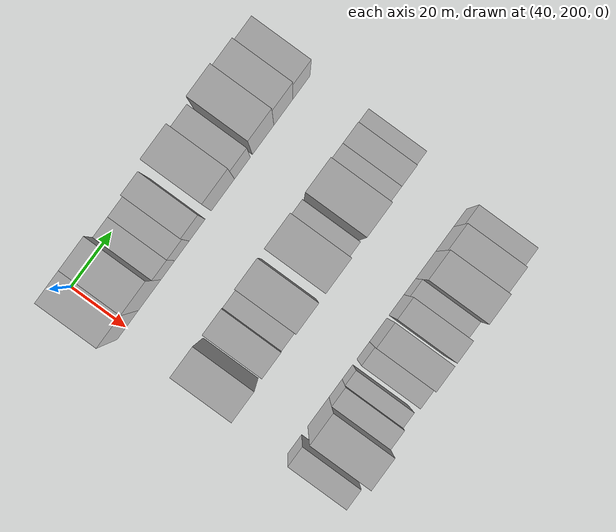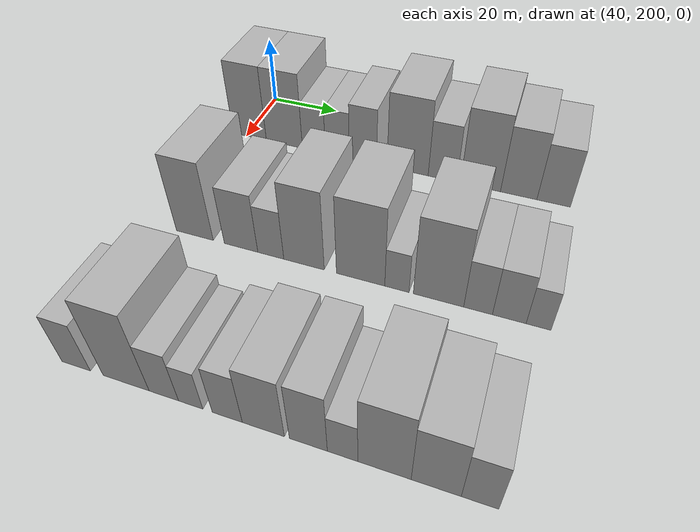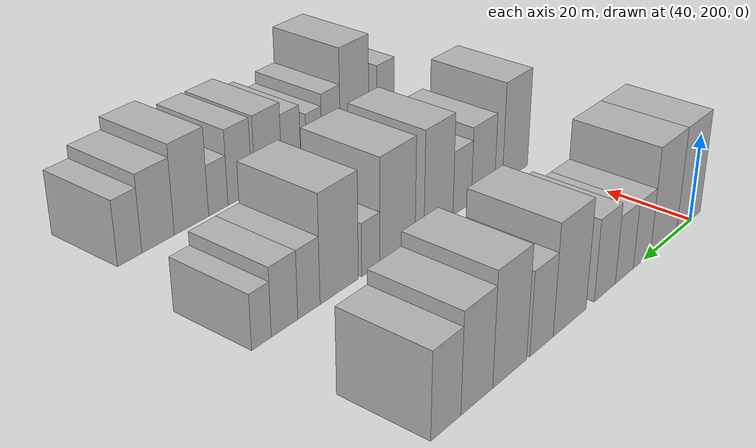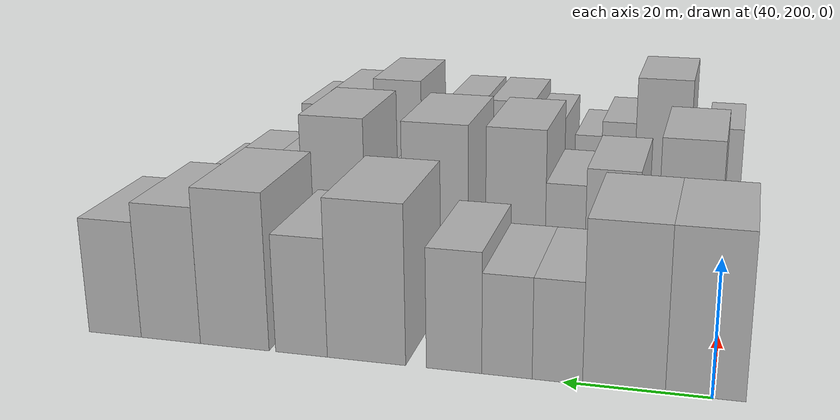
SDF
<sdf version="1.6">
 <world name="default">
  <model name="building_68">
   <static>1</static>
   <pose>50.0000 200.9179 0 0.000000 0.000000 0.000000</pose>
   <link name="link">
    <pose>0 0 12.00 0 0 0</pose>
    <collision name="collision"><geometry><box><size>20.0000 10.5770 24.0000</size></box></geometry></collision>
    <visual name="visual">
     <cast_shadows>0</cast_shadows>
     <geometry><box><size>20.0000 10.5770 24.0000</size></box></geometry>
     <material>
      <script>
       <uri>model://HANNAS_wall/materials/scripts</uri>
       <uri>model://HANNAS_wall/materials/textures</uri>
       <name>vrc/HANNAS_wall</name>
      </script>
     </material>
    </visual>
   </link>
  </model>
  <model name="building_69">
   <static>1</static>
   <pose>50.0000 211.7810 0 0.000000 0.000000 0.000000</pose>
   <link name="link">
    <pose>0 0 12.00 0 0 0</pose>
    <collision name="collision"><geometry><box><size>20.0000 11.1493 24.0000</size></box></geometry></collision>
    <visual name="visual">
     <cast_shadows>0</cast_shadows>
     <geometry><box><size>20.0000 11.1493 24.0000</size></box></geometry>
     <material>
      <script>
       <uri>model://HANNAS_wall/materials/scripts</uri>
       <uri>model://HANNAS_wall/materials/textures</uri>
       <name>vrc/HANNAS_wall</name>
      </script>
     </material>
    </visual>
   </link>
  </model>
  <model name="building_70">
   <static>1</static>
   <pose>50.0000 220.8269 0 0.000000 0.000000 0.000000</pose>
   <link name="link">
    <pose>0 0 7.50 0 0 0</pose>
    <collision name="collision"><geometry><box><size>20.0000 6.9425 15.0000</size></box></geometry></collision>
    <visual name="visual">
     <cast_shadows>0</cast_shadows>
     <geometry><box><size>20.0000 6.9425 15.0000</size></box></geometry>
     <material>
      <script>
       <uri>model://HANNAS_wall/materials/scripts</uri>
       <uri>model://HANNAS_wall/materials/textures</uri>
       <name>vrc/HANNAS_wall</name>
      </script>
     </material>
    </visual>
   </link>
  </model>
  <model name="building_71">
   <static>1</static>
   <pose>50.0000 227.8247 0 0.000000 0.000000 0.000000</pose>
   <link name="link">
    <pose>0 0 7.50 0 0 0</pose>
    <collision name="collision"><geometry><box><size>20.0000 7.0530 15.0000</size></box></geometry></collision>
    <visual name="visual">
     <cast_shadows>0</cast_shadows>
     <geometry><box><size>20.0000 7.0530 15.0000</size></box></geometry>
     <material>
      <script>
       <uri>model://HANNAS_wall/materials/scripts</uri>
       <uri>model://HANNAS_wall/materials/textures</uri>
       <name>vrc/HANNAS_wall</name>
      </script>
     </material>
    </visual>
   </link>
  </model>
  <model name="building_72">
   <static>1</static>
   <pose>50.0000 235.3184 0 0.000000 0.000000 0.000000</pose>
   <link name="link">
    <pose>0 0 9.00 0 0 0</pose>
    <collision name="collision"><geometry><box><size>20.0000 7.9345 18.0000</size></box></geometry></collision>
    <visual name="visual">
     <cast_shadows>0</cast_shadows>
     <geometry><box><size>20.0000 7.9345 18.0000</size></box></geometry>
     <material>
      <script>
       <uri>model://HANNAS_wall/materials/scripts</uri>
       <uri>model://HANNAS_wall/materials/textures</uri>
       <name>vrc/HANNAS_wall</name>
      </script>
     </material>
    </visual>
   </link>
  </model>
  <model name="building_73">
   <static>1</static>
   <pose>50.0000 248.0648 0 0.000000 0.000000 0.000000</pose>
   <link name="link">
    <pose>0 0 12.00 0 0 0</pose>
    <collision name="collision"><geometry><box><size>20.0000 11.5583 24.0000</size></box></geometry></collision>
    <visual name="visual">
     <cast_shadows>0</cast_shadows>
     <geometry><box><size>20.0000 11.5583 24.0000</size></box></geometry>
     <material>
      <script>
       <uri>model://HANNAS_wall/materials/scripts</uri>
       <uri>model://HANNAS_wall/materials/textures</uri>
       <name>vrc/HANNAS_wall</name>
      </script>
     </material>
    </visual>
   </link>
  </model>
  <model name="building_74">
   <static>1</static>
   <pose>50.0000 257.7547 0 0.000000 0.000000 0.000000</pose>
   <link name="link">
    <pose>0 0 9.00 0 0 0</pose>
    <collision name="collision"><geometry><box><size>20.0000 7.8214 18.0000</size></box></geometry></collision>
    <visual name="visual">
     <cast_shadows>0</cast_shadows>
     <geometry><box><size>20.0000 7.8214 18.0000</size></box></geometry>
     <material>
      <script>
       <uri>model://HANNAS_wall/materials/scripts</uri>
       <uri>model://HANNAS_wall/materials/textures</uri>
       <name>vrc/HANNAS_wall</name>
      </script>
     </material>
    </visual>
   </link>
  </model>
  <model name="building_75">
   <static>1</static>
   <pose>50.0000 267.9823 0 0.000000 0.000000 0.000000</pose>
   <link name="link">
    <pose>0 0 12.00 0 0 0</pose>
    <collision name="collision"><geometry><box><size>20.0000 10.6339 24.0000</size></box></geometry></collision>
    <visual name="visual">
     <cast_shadows>0</cast_shadows>
     <geometry><box><size>20.0000 10.6339 24.0000</size></box></geometry>
     <material>
      <script>
       <uri>model://HANNAS_wall/materials/scripts</uri>
       <uri>model://HANNAS_wall/materials/textures</uri>
       <name>vrc/HANNAS_wall</name>
      </script>
     </material>
    </visual>
   </link>
  </model>
  <model name="building_76">
   <static>1</static>
   <pose>50.0000 278.0014 0 0.000000 0.000000 0.000000</pose>
   <link name="link">
    <pose>0 0 10.50 0 0 0</pose>
    <collision name="collision"><geometry><box><size>20.0000 9.4041 21.0000</size></box></geometry></collision>
    <visual name="visual">
     <cast_shadows>0</cast_shadows>
     <geometry><box><size>20.0000 9.4041 21.0000</size></box></geometry>
     <material>
      <script>
       <uri>model://HANNAS_wall/materials/scripts</uri>
       <uri>model://HANNAS_wall/materials/textures</uri>
       <name>vrc/HANNAS_wall</name>
      </script>
     </material>
    </visual>
   </link>
  </model>
  <model name="building_77">
   <static>1</static>
   <pose>50.0000 286.9192 0 0.000000 0.000000 0.000000</pose>
   <link name="link">
    <pose>0 0 9.00 0 0 0</pose>
    <collision name="collision"><geometry><box><size>20.0000 8.4316 18.0000</size></box></geometry></collision>
    <visual name="visual">
     <cast_shadows>0</cast_shadows>
     <geometry><box><size>20.0000 8.4316 18.0000</size></box></geometry>
     <material>
      <script>
       <uri>model://HANNAS_wall/materials/scripts</uri>
       <uri>model://HANNAS_wall/materials/textures</uri>
       <name>vrc/HANNAS_wall</name>
      </script>
     </material>
    </visual>
   </link>
  </model>
  <model name="building_158">
   <static>1</static>
   <pose>90.0000 205.8210 0 0.000000 0.000000 0.000000</pose>
   <link name="link">
    <pose>0 0 12.00 0 0 0</pose>
    <collision name="collision"><geometry><box><size>20.0000 10.0894 24.0000</size></box></geometry></collision>
    <visual name="visual">
     <cast_shadows>0</cast_shadows>
     <geometry><box><size>20.0000 10.0894 24.0000</size></box></geometry>
     <material>
      <script>
       <uri>model://HANNAS_wall/materials/scripts</uri>
       <uri>model://HANNAS_wall/materials/textures</uri>
       <name>vrc/HANNAS_wall</name>
      </script>
     </material>
    </visual>
   </link>
  </model>
  <model name="building_159">
   <static>1</static>
   <pose>90.0000 218.2884 0 0.000000 0.000000 0.000000</pose>
   <link name="link">
    <pose>0 0 9.00 0 0 0</pose>
    <collision name="collision"><geometry><box><size>20.0000 8.8454 18.0000</size></box></geometry></collision>
    <visual name="visual">
     <cast_shadows>0</cast_shadows>
     <geometry><box><size>20.0000 8.8454 18.0000</size></box></geometry>
     <material>
      <script>
       <uri>model://HANNAS_wall/materials/scripts</uri>
       <uri>model://HANNAS_wall/materials/textures</uri>
       <name>vrc/HANNAS_wall</name>
      </script>
     </material>
    </visual>
   </link>
  </model>
  <model name="building_160">
   <static>1</static>
   <pose>90.0000 226.0633 0 0.000000 0.000000 0.000000</pose>
   <link name="link">
    <pose>0 0 7.50 0 0 0</pose>
    <collision name="collision"><geometry><box><size>20.0000 6.7044 15.0000</size></box></geometry></collision>
    <visual name="visual">
     <cast_shadows>0</cast_shadows>
     <geometry><box><size>20.0000 6.7044 15.0000</size></box></geometry>
     <material>
      <script>
       <uri>model://HANNAS_wall/materials/scripts</uri>
       <uri>model://HANNAS_wall/materials/textures</uri>
       <name>vrc/HANNAS_wall</name>
      </script>
     </material>
    </visual>
   </link>
  </model>
  <model name="building_161">
   <static>1</static>
   <pose>90.0000 234.4934 0 0.000000 0.000000 0.000000</pose>
   <link name="link">
    <pose>0 0 12.00 0 0 0</pose>
    <collision name="collision"><geometry><box><size>20.0000 10.1559 24.0000</size></box></geometry></collision>
    <visual name="visual">
     <cast_shadows>0</cast_shadows>
     <geometry><box><size>20.0000 10.1559 24.0000</size></box></geometry>
     <material>
      <script>
       <uri>model://HANNAS_wall/materials/scripts</uri>
       <uri>model://HANNAS_wall/materials/textures</uri>
       <name>vrc/HANNAS_wall</name>
      </script>
     </material>
    </visual>
   </link>
  </model>
  <model name="building_162">
   <static>1</static>
   <pose>90.0000 248.3686 0 0.000000 0.000000 0.000000</pose>
   <link name="link">
    <pose>0 0 12.00 0 0 0</pose>
    <collision name="collision"><geometry><box><size>20.0000 11.5945 24.0000</size></box></geometry></collision>
    <visual name="visual">
     <cast_shadows>0</cast_shadows>
     <geometry><box><size>20.0000 11.5945 24.0000</size></box></geometry>
     <material>
      <script>
       <uri>model://HANNAS_wall/materials/scripts</uri>
       <uri>model://HANNAS_wall/materials/textures</uri>
       <name>vrc/HANNAS_wall</name>
      </script>
     </material>
    </visual>
   </link>
  </model>
  <model name="building_163">
   <static>1</static>
   <pose>90.0000 256.9920 0 0.000000 0.000000 0.000000</pose>
   <link name="link">
    <pose>0 0 6.00 0 0 0</pose>
    <collision name="collision"><geometry><box><size>20.0000 5.6522 12.0000</size></box></geometry></collision>
    <visual name="visual">
     <cast_shadows>0</cast_shadows>
     <geometry><box><size>20.0000 5.6522 12.0000</size></box></geometry>
     <material>
      <script>
       <uri>model://HANNAS_wall/materials/scripts</uri>
       <uri>model://HANNAS_wall/materials/textures</uri>
       <name>vrc/HANNAS_wall</name>
      </script>
     </material>
    </visual>
   </link>
  </model>
  <model name="building_164">
   <static>1</static>
   <pose>90.0000 266.5095 0 0.000000 0.000000 0.000000</pose>
   <link name="link">
    <pose>0 0 12.00 0 0 0</pose>
    <collision name="collision"><geometry><box><size>20.0000 11.3828 24.0000</size></box></geometry></collision>
    <visual name="visual">
     <cast_shadows>0</cast_shadows>
     <geometry><box><size>20.0000 11.3828 24.0000</size></box></geometry>
     <material>
      <script>
       <uri>model://HANNAS_wall/materials/scripts</uri>
       <uri>model://HANNAS_wall/materials/textures</uri>
       <name>vrc/HANNAS_wall</name>
      </script>
     </material>
    </visual>
   </link>
  </model>
  <model name="building_165">
   <static>1</static>
   <pose>90.0000 275.3521 0 0.000000 0.000000 0.000000</pose>
   <link name="link">
    <pose>0 0 7.50 0 0 0</pose>
    <collision name="collision"><geometry><box><size>20.0000 6.3025 15.0000</size></box></geometry></collision>
    <visual name="visual">
     <cast_shadows>0</cast_shadows>
     <geometry><box><size>20.0000 6.3025 15.0000</size></box></geometry>
     <material>
      <script>
       <uri>model://HANNAS_wall/materials/scripts</uri>
       <uri>model://HANNAS_wall/materials/textures</uri>
       <name>vrc/HANNAS_wall</name>
      </script>
     </material>
    </visual>
   </link>
  </model>
  <model name="building_166">
   <static>1</static>
   <pose>90.0000 282.1165 0 0.000000 0.000000 0.000000</pose>
   <link name="link">
    <pose>0 0 7.50 0 0 0</pose>
    <collision name="collision"><geometry><box><size>20.0000 7.2263 15.0000</size></box></geometry></collision>
    <visual name="visual">
     <cast_shadows>0</cast_shadows>
     <geometry><box><size>20.0000 7.2263 15.0000</size></box></geometry>
     <material>
      <script>
       <uri>model://HANNAS_wall/materials/scripts</uri>
       <uri>model://HANNAS_wall/materials/textures</uri>
       <name>vrc/HANNAS_wall</name>
      </script>
     </material>
    </visual>
   </link>
  </model>
  <model name="building_167">
   <static>1</static>
   <pose>90.0000 288.3420 0 0.000000 0.000000 0.000000</pose>
   <link name="link">
    <pose>0 0 6.00 0 0 0</pose>
    <collision name="collision"><geometry><box><size>20.0000 5.2246 12.0000</size></box></geometry></collision>
    <visual name="visual">
     <cast_shadows>0</cast_shadows>
     <geometry><box><size>20.0000 5.2246 12.0000</size></box></geometry>
     <material>
      <script>
       <uri>model://HANNAS_wall/materials/scripts</uri>
       <uri>model://HANNAS_wall/materials/textures</uri>
       <name>vrc/HANNAS_wall</name>
      </script>
     </material>
    </visual>
   </link>
  </model>
  <model name="building_232">
   <static>1</static>
   <pose>130.0000 201.6313 0 0.000000 0.000000 0.000000</pose>
   <link name="link">
    <pose>0 0 7.50 0 0 0</pose>
    <collision name="collision"><geometry><box><size>20.0000 6.8002 15.0000</size></box></geometry></collision>
    <visual name="visual">
     <cast_shadows>0</cast_shadows>
     <geometry><box><size>20.0000 6.8002 15.0000</size></box></geometry>
     <material>
      <script>
       <uri>model://HANNAS_wall/materials/scripts</uri>
       <uri>model://HANNAS_wall/materials/textures</uri>
       <name>vrc/HANNAS_wall</name>
      </script>
     </material>
    </visual>
   </link>
  </model>
  <model name="building_233">
   <static>1</static>
   <pose>130.0000 213.3090 0 0.000000 0.000000 0.000000</pose>
   <link name="link">
    <pose>0 0 12.00 0 0 0</pose>
    <collision name="collision"><geometry><box><size>20.0000 10.5552 24.0000</size></box></geometry></collision>
    <visual name="visual">
     <cast_shadows>0</cast_shadows>
     <geometry><box><size>20.0000 10.5552 24.0000</size></box></geometry>
     <material>
      <script>
       <uri>model://HANNAS_wall/materials/scripts</uri>
       <uri>model://HANNAS_wall/materials/textures</uri>
       <name>vrc/HANNAS_wall</name>
      </script>
     </material>
    </visual>
   </link>
  </model>
  <model name="building_234">
   <static>1</static>
   <pose>130.0000 221.8537 0 0.000000 0.000000 0.000000</pose>
   <link name="link">
    <pose>0 0 7.50 0 0 0</pose>
    <collision name="collision"><geometry><box><size>20.0000 6.5341 15.0000</size></box></geometry></collision>
    <visual name="visual">
     <cast_shadows>0</cast_shadows>
     <geometry><box><size>20.0000 6.5341 15.0000</size></box></geometry>
     <material>
      <script>
       <uri>model://HANNAS_wall/materials/scripts</uri>
       <uri>model://HANNAS_wall/materials/textures</uri>
       <name>vrc/HANNAS_wall</name>
      </script>
     </material>
    </visual>
   </link>
  </model>
  <model name="building_235">
   <static>1</static>
   <pose>130.0000 227.7614 0 0.000000 0.000000 0.000000</pose>
   <link name="link">
    <pose>0 0 6.00 0 0 0</pose>
    <collision name="collision"><geometry><box><size>20.0000 5.2813 12.0000</size></box></geometry></collision>
    <visual name="visual">
     <cast_shadows>0</cast_shadows>
     <geometry><box><size>20.0000 5.2813 12.0000</size></box></geometry>
     <material>
      <script>
       <uri>model://HANNAS_wall/materials/scripts</uri>
       <uri>model://HANNAS_wall/materials/textures</uri>
       <name>vrc/HANNAS_wall</name>
      </script>
     </material>
    </visual>
   </link>
  </model>
  <model name="building_236">
   <static>1</static>
   <pose>130.0000 235.5692 0 0.000000 0.000000 0.000000</pose>
   <link name="link">
    <pose>0 0 7.50 0 0 0</pose>
    <collision name="collision"><geometry><box><size>20.0000 6.3343 15.0000</size></box></geometry></collision>
    <visual name="visual">
     <cast_shadows>0</cast_shadows>
     <geometry><box><size>20.0000 6.3343 15.0000</size></box></geometry>
     <material>
      <script>
       <uri>model://HANNAS_wall/materials/scripts</uri>
       <uri>model://HANNAS_wall/materials/textures</uri>
       <name>vrc/HANNAS_wall</name>
      </script>
     </material>
    </visual>
   </link>
  </model>
  <model name="building_237">
   <static>1</static>
   <pose>130.0000 243.0323 0 0.000000 0.000000 0.000000</pose>
   <link name="link">
    <pose>0 0 9.00 0 0 0</pose>
    <collision name="collision"><geometry><box><size>20.0000 8.5920 18.0000</size></box></geometry></collision>
    <visual name="visual">
     <cast_shadows>0</cast_shadows>
     <geometry><box><size>20.0000 8.5920 18.0000</size></box></geometry>
     <material>
      <script>
       <uri>model://HANNAS_wall/materials/scripts</uri>
       <uri>model://HANNAS_wall/materials/textures</uri>
       <name>vrc/HANNAS_wall</name>
      </script>
     </material>
    </visual>
   </link>
  </model>
  <model name="building_238">
   <static>1</static>
   <pose>130.0000 252.0592 0 0.000000 0.000000 0.000000</pose>
   <link name="link">
    <pose>0 0 9.00 0 0 0</pose>
    <collision name="collision"><geometry><box><size>20.0000 7.4618 18.0000</size></box></geometry></collision>
    <visual name="visual">
     <cast_shadows>0</cast_shadows>
     <geometry><box><size>20.0000 7.4618 18.0000</size></box></geometry>
     <material>
      <script>
       <uri>model://HANNAS_wall/materials/scripts</uri>
       <uri>model://HANNAS_wall/materials/textures</uri>
       <name>vrc/HANNAS_wall</name>
      </script>
     </material>
    </visual>
   </link>
  </model>
  <model name="building_239">
   <static>1</static>
   <pose>130.0000 258.6977 0 0.000000 0.000000 0.000000</pose>
   <link name="link">
    <pose>0 0 6.00 0 0 0</pose>
    <collision name="collision"><geometry><box><size>20.0000 5.8151 12.0000</size></box></geometry></collision>
    <visual name="visual">
     <cast_shadows>0</cast_shadows>
     <geometry><box><size>20.0000 5.8151 12.0000</size></box></geometry>
     <material>
      <script>
       <uri>model://HANNAS_wall/materials/scripts</uri>
       <uri>model://HANNAS_wall/materials/textures</uri>
       <name>vrc/HANNAS_wall</name>
      </script>
     </material>
    </visual>
   </link>
  </model>
  <model name="building_240">
   <static>1</static>
   <pose>130.0000 266.5597 0 0.000000 0.000000 0.000000</pose>
   <link name="link">
    <pose>0 0 10.50 0 0 0</pose>
    <collision name="collision"><geometry><box><size>20.0000 9.9089 21.0000</size></box></geometry></collision>
    <visual name="visual">
     <cast_shadows>0</cast_shadows>
     <geometry><box><size>20.0000 9.9089 21.0000</size></box></geometry>
     <material>
      <script>
       <uri>model://HANNAS_wall/materials/scripts</uri>
       <uri>model://HANNAS_wall/materials/textures</uri>
       <name>vrc/HANNAS_wall</name>
      </script>
     </material>
    </visual>
   </link>
  </model>
  <model name="building_241">
   <static>1</static>
   <pose>130.0000 275.9840 0 0.000000 0.000000 0.000000</pose>
   <link name="link">
    <pose>0 0 9.00 0 0 0</pose>
    <collision name="collision"><geometry><box><size>20.0000 8.9395 18.0000</size></box></geometry></collision>
    <visual name="visual">
     <cast_shadows>0</cast_shadows>
     <geometry><box><size>20.0000 8.9395 18.0000</size></box></geometry>
     <material>
      <script>
       <uri>model://HANNAS_wall/materials/scripts</uri>
       <uri>model://HANNAS_wall/materials/textures</uri>
       <name>vrc/HANNAS_wall</name>
      </script>
     </material>
    </visual>
   </link>
  </model>
  <model name="building_242">
   <static>1</static>
   <pose>130.0000 283.6913 0 0.000000 0.000000 0.000000</pose>
   <link name="link">
    <pose>0 0 7.50 0 0 0</pose>
    <collision name="collision"><geometry><box><size>20.0000 6.4752 15.0000</size></box></geometry></collision>
    <visual name="visual">
     <cast_shadows>0</cast_shadows>
     <geometry><box><size>20.0000 6.4752 15.0000</size></box></geometry>
     <material>
      <script>
       <uri>model://HANNAS_wall/materials/scripts</uri>
       <uri>model://HANNAS_wall/materials/textures</uri>
       <name>vrc/HANNAS_wall</name>
      </script>
     </material>
    </visual>
   </link>
  </model>
 </world>
</sdf>
